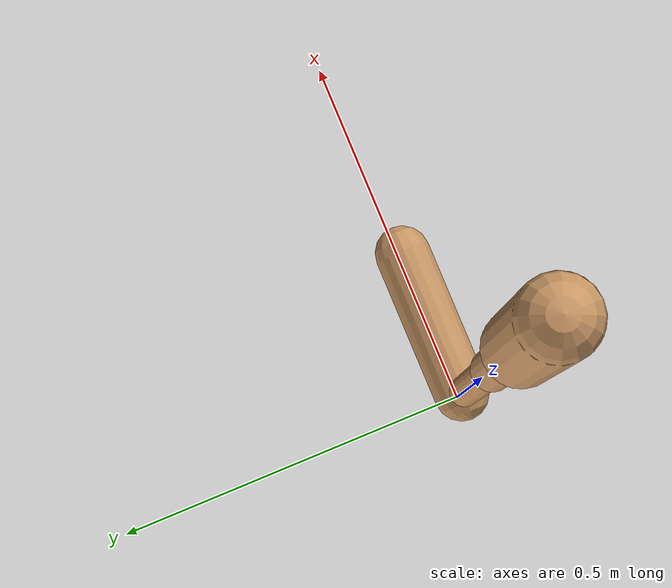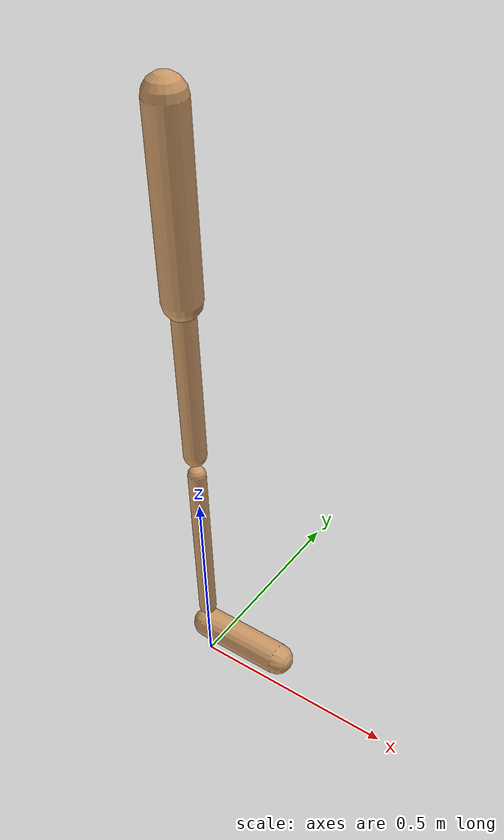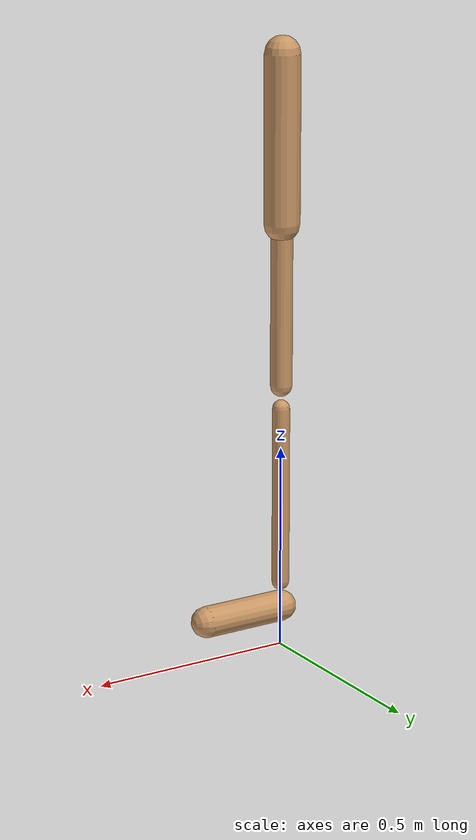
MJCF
<mujoco model="walker2d">
  <compiler angle="degree" coordinate="global" inertiafromgeom="true" />
  <default>
    <joint armature="0.01" damping=".1" limited="true" />
    <geom conaffinity="0" condim="3" contype="1" density="1000" friction="0.8 .1 .1" rgba="0.8 0.6 .4 1" />
  </default>
  <option integrator="RK4" timestep="0.002" />
  <worldbody>

    <body name="torso" pos="0 0 -0.11996958647758646">
      <joint armature="0" axis="1 0 0" damping="0" limited="false" name="ignorex" pos="0 0 0" stiffness="0" type="slide" />
      <joint armature="0" axis="0 0 1" damping="0" limited="false" name="ignorez" pos="0 0 0" ref="1.25" stiffness="0" type="slide" />
      <joint armature="0" axis="0 1 0" damping="0" limited="false" name="ignorey" pos="0 0 0" stiffness="0" type="hinge" />
      <geom fromto="0 0 1.45 0 0 1.05" name="torso_geom" size="0.042879753824353294" type="capsule" />
      <body name="thigh">
        <joint axis="0 -1 0" name="thigh_joint" pos="0 0 1.05" range="-150 0" type="hinge" />
        <geom fromto="0.0 0.0 1.05 0.0 0.0 0.6568276988578041" name="thigh_geom" size="0.02628494778560493" type="capsule" />
        <body name="leg" pos="0.0 0.0 0.05682769885780414">
          <joint axis="0 -1 0" name="leg_joint" pos="0 0 0.6" range="-150 0" type="hinge" />
          <geom fromto="0.0 0.0 0.6 0.0 0.0 0.16314188761978235" name="leg_geom" size="0.021027958228483943" type="capsule" />
          <body name="foot" pos="0.0 0.0 0.06314188761978234">
            <joint axis="0 -1 0" name="foot_joint" pos="0 0 0.1" range="-45 45" type="hinge" />
            <geom fromto="-0.0 0.0 0.1 0.20890947737531504 0.0 0.1" name="foot_geom" size="0.03790772028687644" type="capsule" />
          </body>
        </body>
      </body>

      <body name="thigh_left">
        <joint axis="0 -1 0" name="thigh_left_joint" pos="0 0 1.05" range="-150 0" type="hinge" />
        <geom fromto="0.0 0.0 1.05 0.0 0.0 0.6568276988578041" name="thigh_left_geom" rgba=".7 .3 .6 1" size="0.02628494778560493" type="capsule" />
        <body name="leg_left" pos="0.0 0.0 0.05682769885780414">
          <joint axis="0 -1 0" name="leg_left_joint" pos="0 0 0.6" range="-150 0" type="hinge" />
          <geom fromto="0.0 0.0 0.6 0.0 0.0 0.16314188761978235" name="leg_left_geom" rgba=".7 .3 .6 1" size="0.021027958228483943" type="capsule" />
          <body name="foot_left" pos="0.0 0.0 0.06314188761978234">
            <joint axis="0 -1 0" name="foot_left_joint" pos="0 0 0.1" range="-45 45" type="hinge" />
            <geom fromto="-0.0 0.0 0.1 0.20890947737531504 0.0 0.1" name="foot_left_geom" rgba=".7 .3 .6 1" size="0.03790772028687644" type="capsule" />
          </body>
        </body>
      </body>
    </body>
  </worldbody>
  <actuator>

    <motor ctrllimited="true" ctrlrange="-1.0 1.0" gear="100" joint="thigh_joint" />
    <motor ctrllimited="true" ctrlrange="-1.0 1.0" gear="100" joint="leg_joint" />
    <motor ctrllimited="true" ctrlrange="-1.0 1.0" gear="100" joint="foot_joint" />
    <motor ctrllimited="true" ctrlrange="-1.0 1.0" gear="100" joint="thigh_left_joint" />
    <motor ctrllimited="true" ctrlrange="-1.0 1.0" gear="100" joint="leg_left_joint" />
    <motor ctrllimited="true" ctrlrange="-1.0 1.0" gear="100" joint="foot_left_joint" />

  </actuator>
</mujoco>
